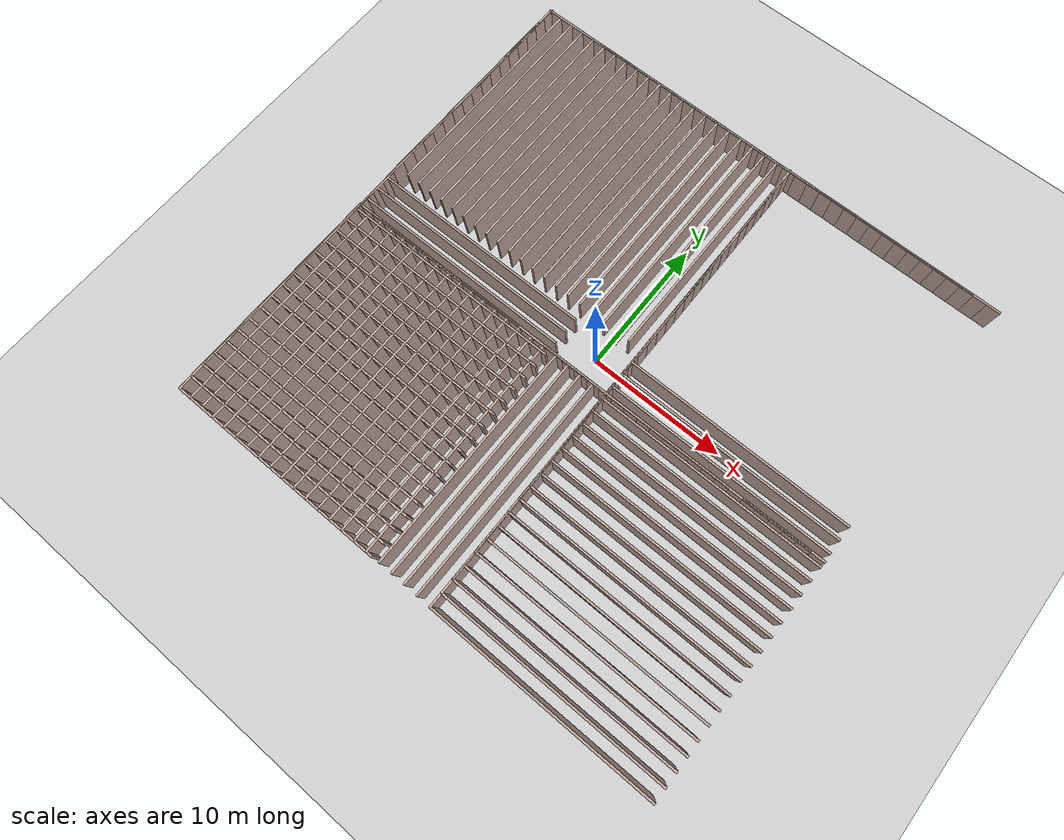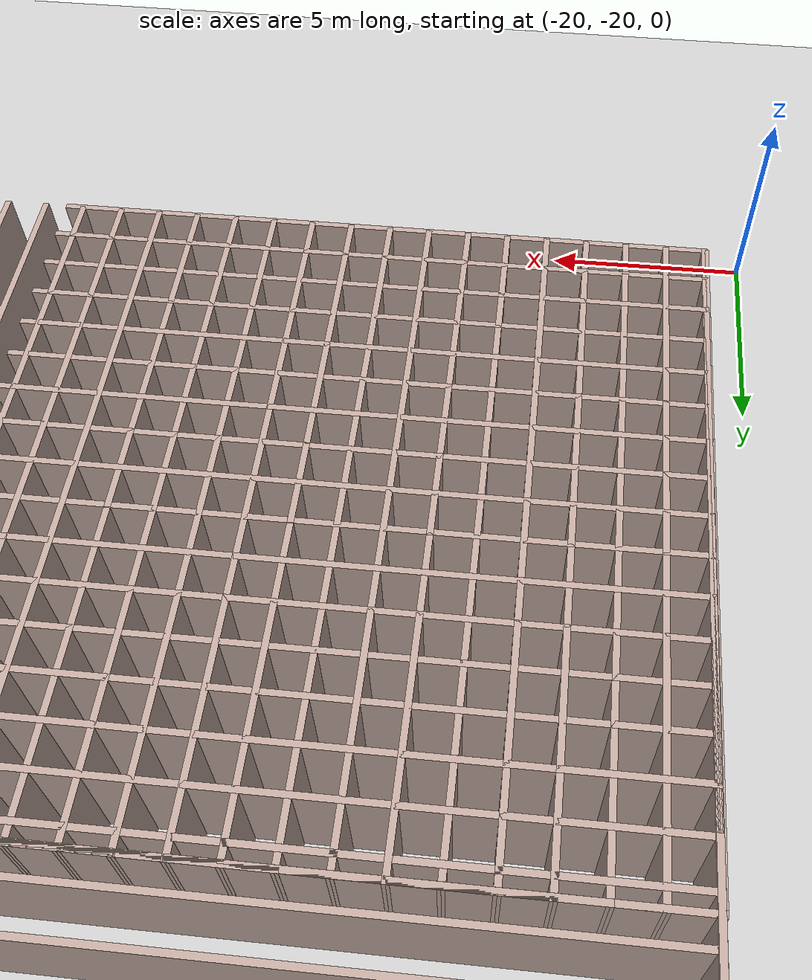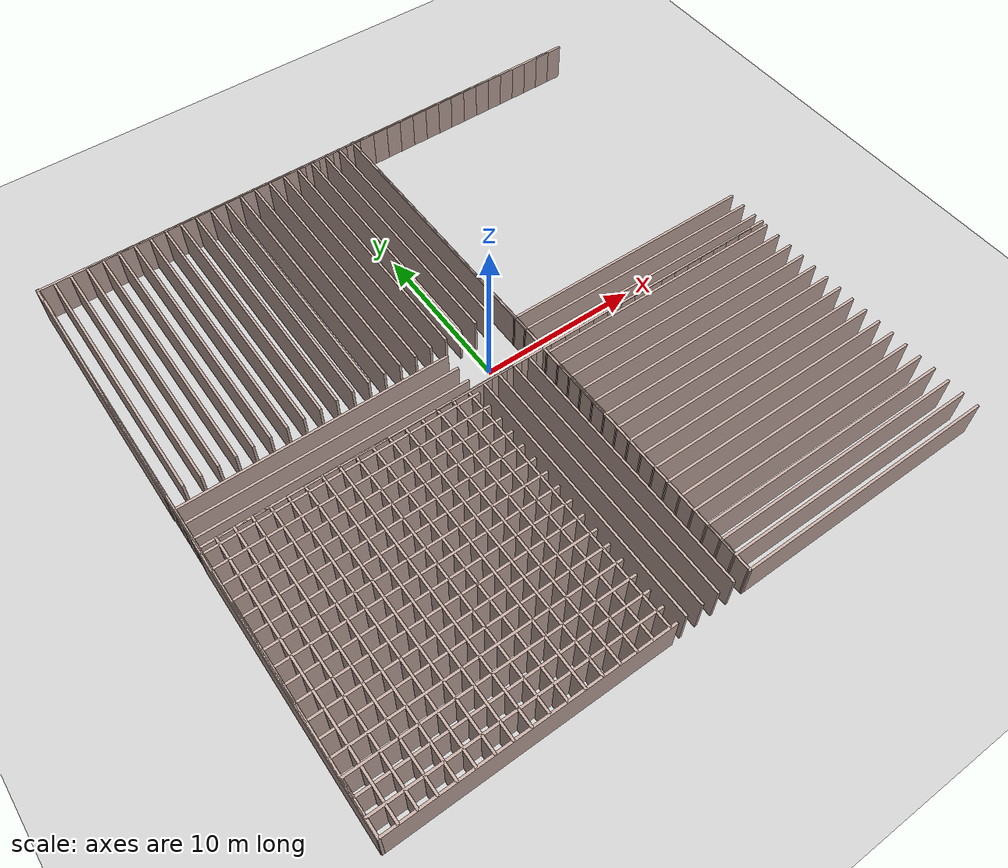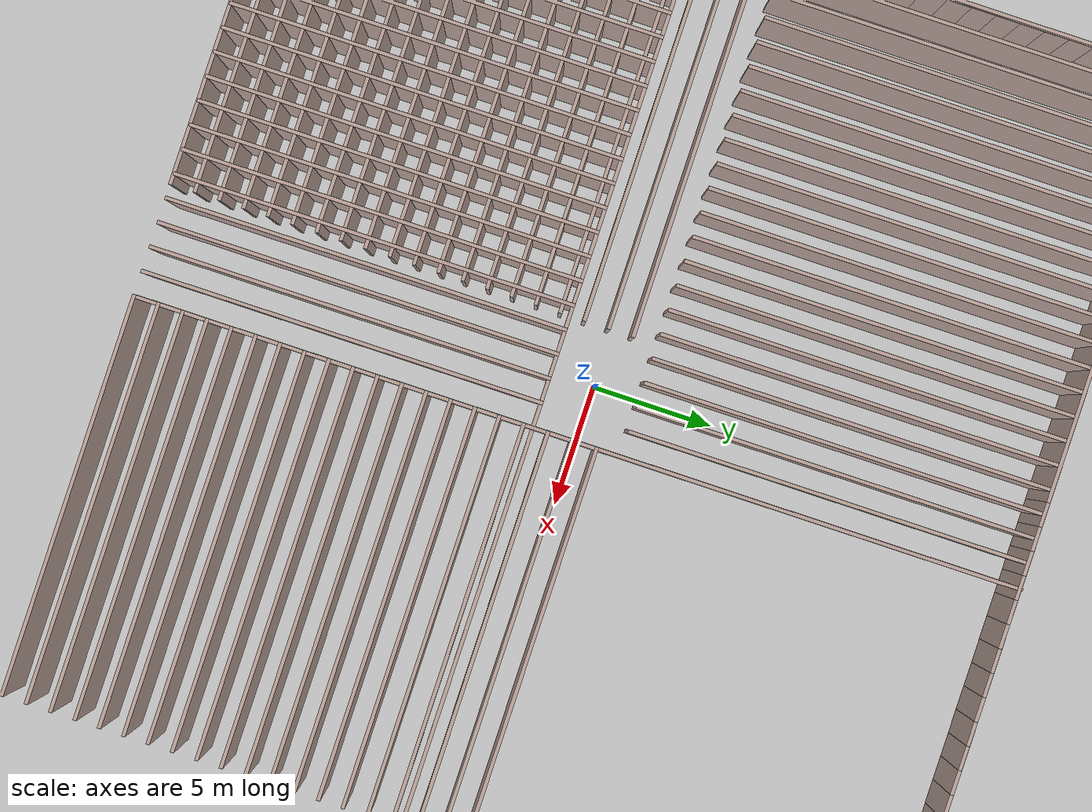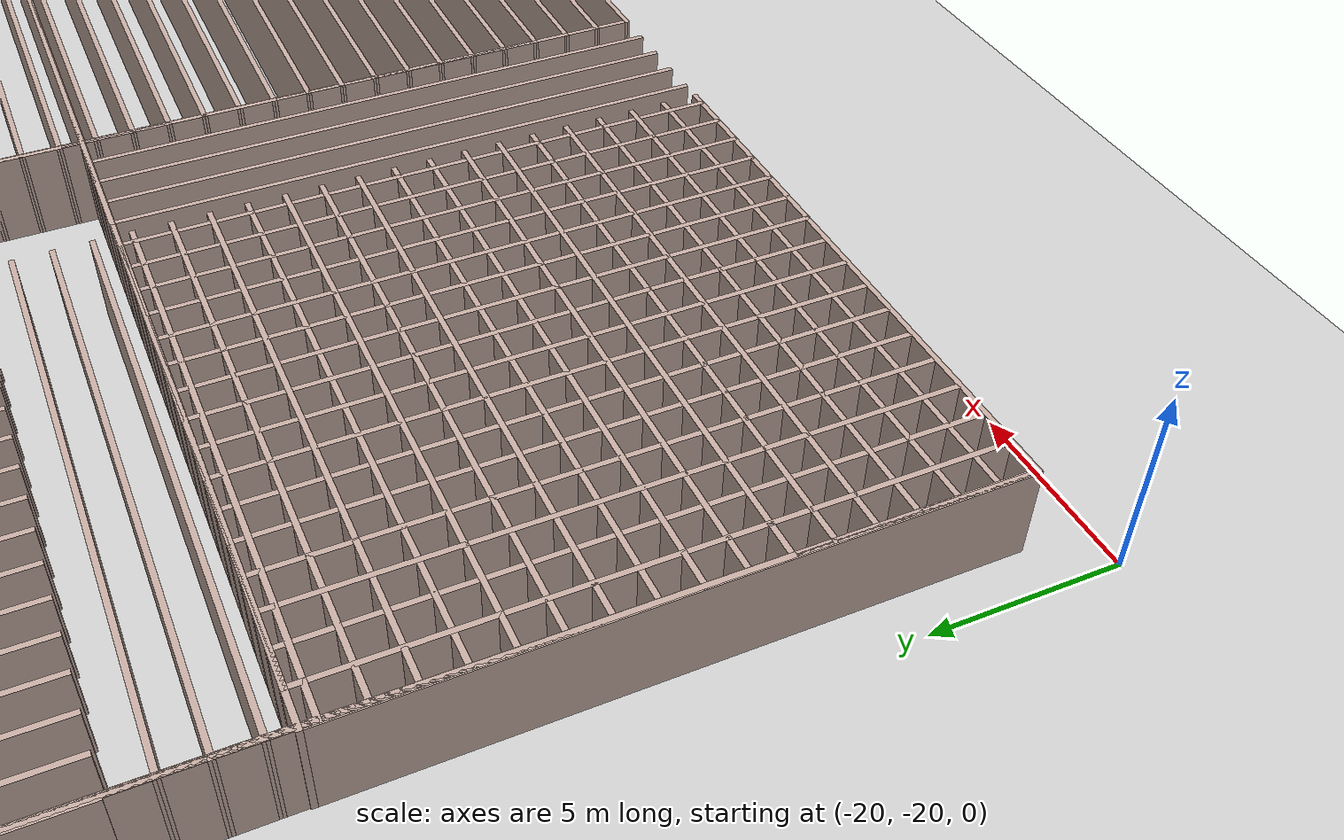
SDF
<?xml version="1.0" ?>

<sdf version="1.5">
	<world name="default">
		<!-- A global light source -->
		<include>
			<uri>model://sun</uri>
		</include>

		<!-- A ground plane -->
		<include>
			<uri>model://ground_plane</uri>
		</include>

        <!-- Left wall -->

        <include>
            <uri>model://wall</uri>
            <name>wall_left_01</name>
            <pose>-10 10 0 0 0 0</pose>
        </include>

        <include>
            <uri>model://wall</uri>
            <name>wall_left_02</name>
            <pose>-9 10 0 0 0 0</pose>
        </include>

        <include>
            <uri>model://wall</uri>
            <name>wall_left_03</name>
            <pose>-8 10 0 0 0 0</pose>
        </include>

        <include>
            <uri>model://wall</uri>
            <name>wall_left_04</name>
            <pose>-7 10 0 0 0 0</pose>
        </include>

        <include>
            <uri>model://wall</uri>
            <name>wall_left_05</name>
            <pose>-6 10 0 0 0 0</pose>
        </include>

        <include>
            <uri>model://wall</uri>
            <name>wall_left_06</name>
            <pose>-5 10 0 0 0 0</pose>
        </include>

        <include>
            <uri>model://wall</uri>
            <name>wall_left_07</name>
            <pose>-4 10 0 0 0 0</pose>
        </include>

        <include>
            <uri>model://wall</uri>
            <name>wall_left_08</name>
            <pose>-3 10 0 0 0 0</pose>
        </include>

        <include>
            <uri>model://wall</uri>
            <name>wall_left_09</name>
            <pose>-2 10 0 0 0 0</pose>
        </include>

        <include>
            <uri>model://wall</uri>
            <name>wall_left_10</name>
            <pose>-1 10 0 0 0 0</pose>
        </include>

        <include>
            <uri>model://wall</uri>
            <name>wall_left_11</name>
            <pose>0 10 0 0 0 0</pose>
        </include>

        <include>
            <uri>model://wall</uri>
            <name>wall_left_12</name>
            <pose>1 10 0 0 0 0</pose>
        </include>

        <include>
            <uri>model://wall</uri>
            <name>wall_left_13</name>
            <pose>2 10 0 0 0 0</pose>
        </include>

        <include>
            <uri>model://wall</uri>
            <name>wall_left_14</name>
            <pose>3 10 0 0 0 0</pose>
        </include>

        <include>
            <uri>model://wall</uri>
            <name>wall_left_15</name>
            <pose>4 10 0 0 0 0</pose>
        </include>

        <include>
            <uri>model://wall</uri>
            <name>wall_left_16</name>
            <pose>5 10 0 0 0 0</pose>
        </include>

        <include>
            <uri>model://wall</uri>
            <name>wall_left_17</name>
            <pose>6 10 0 0 0 0</pose>
        </include>

        <include>
            <uri>model://wall</uri>
            <name>wall_left_18</name>
            <pose>7 10 0 0 0 0</pose>
        </include>

        <include>
            <uri>model://wall</uri>
            <name>wall_left_19</name>
            <pose>8 10 0 0 0 0</pose>
        </include>

        <include>
            <uri>model://wall</uri>
            <name>wall_left_20</name>
            <pose>9 10 0 0 0 0</pose>
        </include>

        <include>
            <uri>model://wall</uri>
            <name>wall_left_21</name>
            <pose>10 10 0 0 0 0</pose>
        </include>

	<!-- Front wall -->

        <include>
            <uri>model://wall</uri>
            <name>wall_front_01</name>
            <pose>10.5 9.5 0 0 0 1.57</pose>
        </include>

        <include>
            <uri>model://wall</uri>
            <name>wall_front_02</name>
            <pose>10.5 8.5 0 0 0 1.57</pose>
        </include>

        <include>
            <uri>model://wall</uri>
            <name>wall_front_03</name>
            <pose>10.5 7.5 0 0 0 1.57</pose>
        </include>

        <include>
            <uri>model://wall</uri>
            <name>wall_front_04</name>
            <pose>10.5 6.5 0 0 0 1.57</pose>
        </include>

        <include>
            <uri>model://wall</uri>
            <name>wall_front_05</name>
            <pose>10.5 5.5 0 0 0 1.57</pose>
        </include>

        <include>
            <uri>model://wall</uri>
            <name>wall_front_06</name>
            <pose>10.5 4.5 0 0 0 1.57</pose>
        </include>

        <include>
            <uri>model://wall</uri>
            <name>wall_front_07</name>
            <pose>10.5 3.5 0 0 0 1.57</pose>
        </include>

        <include>
            <uri>model://wall</uri>
            <name>wall_front_08</name>
            <pose>10.5 2.5 0 0 0 1.57</pose>
        </include>

        <include>
            <uri>model://wall</uri>
            <name>wall_front_09</name>
            <pose>10.5 1.5 0 0 0 1.57</pose>
        </include>

        <include>
            <uri>model://wall</uri>
            <name>wall_front_10</name>
            <pose>10.5 0.5 0 0 0 1.57</pose>
        </include>

        <include>
            <uri>model://wall</uri>
            <name>wall_front_11</name>
            <pose>10.5 -0.5 0 0 0 1.57</pose>
        </include>

        <include>
            <uri>model://wall</uri>
            <name>wall_front_12</name>
            <pose>10.5 -1.5 0 0 0 1.57</pose>
        </include>

        <include>
            <uri>model://wall</uri>
            <name>wall_front_13</name>
            <pose>10.5 -2.5 0 0 0 1.57</pose>
        </include>

        <include>
            <uri>model://wall</uri>
            <name>wall_front_14</name>
            <pose>10.5 -3.5 0 0 0 1.57</pose>
        </include>

        <include>
            <uri>model://wall</uri>
            <name>wall_front_15</name>
            <pose>10.5 -4.5 0 0 0 1.57</pose>
        </include>

        <include>
            <uri>model://wall</uri>
            <name>wall_front_16</name>
            <pose>10.5 -5.5 0 0 0 1.57</pose>
        </include>

        <include>
            <uri>model://wall</uri>
            <name>wall_front_17</name>
            <pose>10.5 -6.5 0 0 0 1.57</pose>
        </include>

        <include>
            <uri>model://wall</uri>
            <name>wall_front_18</name>
            <pose>10.5 -7.5 0 0 0 1.57</pose>
        </include>

	<include>
            <uri>model://wall</uri>
            <name>wall_front_19</name>
            <pose>10.5 -8.5 0 0 0 1.57</pose>
        </include>

	<include>
            <uri>model://wall</uri>
            <name>wall_front_20</name>
            <pose>10.5 -9.5 0 0 0 1.57</pose>
        </include>

	<!-- Right Wall -->

	<include>
            <uri>model://wall</uri>
            <name>wall_right_01</name>
            <pose>10 -10 0 0 0 0</pose>
        </include>

	<include>
            <uri>model://wall</uri>
            <name>wall_right_02</name>
            <pose>9 -10 0 0 0 0</pose>
        </include>

	<include>
            <uri>model://wall</uri>
            <name>wall_right_03</name>
            <pose>8 -10 0 0 0 0</pose>
        </include>

	<include>
            <uri>model://wall</uri>
            <name>wall_right_04</name>
            <pose>7 -10 0 0 0 0</pose>
        </include>

	<include>
            <uri>model://wall</uri>
            <name>wall_right_05</name>
            <pose>6 -10 0 0 0 0</pose>
        </include>

	<include>
            <uri>model://wall</uri>
            <name>wall_right_06</name>
            <pose>5 -10 0 0 0 0</pose>
        </include>

	<include>
            <uri>model://wall</uri>
            <name>wall_right_07</name>
            <pose>4 -10 0 0 0 0</pose>
        </include>

	<include>
            <uri>model://wall</uri>
            <name>wall_right_08</name>
            <pose>3 -10 0 0 0 0</pose>
        </include>

	<include>
            <uri>model://wall</uri>
            <name>wall_right_09</name>
            <pose>2 -10 0 0 0 0</pose>
        </include>

	<include>
            <uri>model://wall</uri>
            <name>wall_right_10</name>
            <pose>1 -10 0 0 0 0</pose>
        </include>

    <include>
            <uri>model://wall</uri>
            <name>wall_right_11</name>
            <pose>0 -10 0 0 0 0</pose>
        </include>

        <include>
            <uri>model://wall</uri>
            <name>wall_right_12</name>
            <pose>-1 -10 0 0 0 0</pose>
        </include>

        <include>
            <uri>model://wall</uri>
            <name>wall_right_13</name>
            <pose>-2 -10 0 0 0 0</pose>
        </include>

        <include>
            <uri>model://wall</uri>
            <name>wall_right_14</name>
            <pose>-3 -10 0 0 0 0</pose>
        </include>

        <include>
            <uri>model://wall</uri>
            <name>wall_right_15</name>
            <pose>-4 -10 0 0 0 0</pose>
        </include>

        <include>
            <uri>model://wall</uri>
            <name>wall_right_16</name>
            <pose>-5 -10 0 0 0 0</pose>
        </include>

        <include>
            <uri>model://wall</uri>
            <name>wall_right_17</name>
            <pose>-6 -10 0 0 0 0</pose>
        </include>

        <include>
            <uri>model://wall</uri>
            <name>wall_right_18</name>
            <pose>-7 -10 0 0 0 0</pose>
        </include>

        <include>
            <uri>model://wall</uri>
            <name>wall_right_19</name>
            <pose>-8 -10 0 0 0 0</pose>
        </include>

        <include>
            <uri>model://wall</uri>
            <name>wall_right_20</name>
            <pose>-9 -10 0 0 0 0</pose>
        </include>

        <include>
            <uri>model://wall</uri>
            <name>wall_right_21</name>
            <pose>-10 -10 0 0 0 0</pose>
        </include>

    <!-- Back wall -->

        <include>
            <uri>model://wall</uri>
            <name>wall_back_01</name>
            <pose>-10.5 9.5 0 0 0 1.57</pose>
        </include>

        <include>
            <uri>model://wall</uri>
            <name>wall_back_02</name>
            <pose>-10.5 8.5 0 0 0 1.57</pose>
        </include>

        <include>
            <uri>model://wall</uri>
            <name>wall_back_03</name>
            <pose>-10.5 7.5 0 0 0 1.57</pose>
        </include>

        <include>
            <uri>model://wall</uri>
            <name>wall_back_04</name>
            <pose>-10.5 6.5 0 0 0 1.57</pose>
        </include>

        <include>
            <uri>model://wall</uri>
            <name>wall_back_05</name>
            <pose>-10.5 5.5 0 0 0 1.57</pose>
        </include>

        <include>
            <uri>model://wall</uri>
            <name>wall_back_06</name>
            <pose>-10.5 4.5 0 0 0 1.57</pose>
        </include>

        <include>
            <uri>model://wall</uri>
            <name>wall_back_07</name>
            <pose>-10.5 3.5 0 0 0 1.57</pose>
        </include>

        <include>
            <uri>model://wall</uri>
            <name>wall_back_08</name>
            <pose>-10.5 2.5 0 0 0 1.57</pose>
        </include>

        <include>
            <uri>model://wall</uri>
            <name>wall_back_09</name>
            <pose>-10.5 1.5 0 0 0 1.57</pose>
        </include>

        <include>
            <uri>model://wall</uri>
            <name>wall_back_10</name>
            <pose>-10.5 0.5 0 0 0 1.57</pose>
        </include>

        <include>
            <uri>model://wall</uri>
            <name>wall_back_11</name>
            <pose>-10.5 -0.5 0 0 0 1.57</pose>
        </include>

        <include>
            <uri>model://wall</uri>
            <name>wall_back_12</name>
            <pose>-10.5 -1.5 0 0 0 1.57</pose>
        </include>

        <include>
            <uri>model://wall</uri>
            <name>wall_back_13</name>
            <pose>-10.5 -2.5 0 0 0 1.57</pose>
        </include>

        <include>
            <uri>model://wall</uri>
            <name>wall_back_14</name>
            <pose>-10.5 -3.5 0 0 0 1.57</pose>
        </include>

        <include>
            <uri>model://wall</uri>
            <name>wall_back_15</name>
            <pose>-10.5 -4.5 0 0 0 1.57</pose>
        </include>

        <include>
            <uri>model://wall</uri>
            <name>wall_back_16</name>
            <pose>-10.5 -5.5 0 0 0 1.57</pose>
        </include>

        <include>
            <uri>model://wall</uri>
            <name>wall_back_17</name>
            <pose>-10.5 -6.5 0 0 0 1.57</pose>
        </include>

        <include>
            <uri>model://wall</uri>
            <name>wall_back_18</name>
            <pose>-10.5 -7.5 0 0 0 1.57</pose>
        </include>

	<include>
            <uri>model://wall</uri>
            <name>wall_back_19</name>
            <pose>-10.5 -8.5 0 0 0 1.57</pose>
        </include>

	<include>
            <uri>model://wall</uri>
            <name>wall_back_20</name>
            <pose>-10.5 -9.5 0 0 0 1.57</pose>
        </include>

	</world>
</sdf>

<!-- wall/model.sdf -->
<sdf version='1.6'>
  <model name='wall'>
    <pose frame=''>-1.26581 1.80502 0 0 -0 0</pose>
    <link name='Wall_0'>
      <collision name='Wall_0_Collision'>
        <geometry>
          <box>
            <size>16.5 0.15 2.5</size>
          </box>
        </geometry>
        <pose frame=''>0 0 1.25 0 -0 0</pose>
      </collision>
      <visual name='Wall_0_Visual'>
        <pose frame=''>0 0 1.25 0 -0 0</pose>
        <geometry>
          <box>
            <size>16.5 0.15 2.5</size>
          </box>
        </geometry>
        <material>
          <script>
            <uri>file://media/materials/scripts/gazebo.material</uri>
            <name>Gazebo/Grey</name>
          </script>
          <ambient>0.760784 0.662745 0.627451 1</ambient>
        </material>
        <meta>
          <layer>0</layer>
        </meta>
      </visual>
      <pose frame=''>-8.71419 -1.8e-05 0 0 0 -1.5708</pose>
    </link>
    <link name='Wall_2'>
      <collision name='Wall_2_Collision'>
        <geometry>
          <box>
            <size>17.5784 0.15 2.5</size>
          </box>
        </geometry>
        <pose frame=''>0 0 1.25 0 -0 0</pose>
      </collision>
      <visual name='Wall_2_Visual'>
        <pose frame=''>0 0 1.25 0 -0 0</pose>
        <geometry>
          <box>
            <size>17.5784 0.15 2.5</size>
          </box>
        </geometry>
        <material>
          <script>
            <uri>file://media/materials/scripts/gazebo.material</uri>
            <name>Gazebo/Grey</name>
          </script>
          <ambient>0.760784 0.662745 0.627451 1</ambient>
        </material>
        <meta>
          <layer>0</layer>
        </meta>
      </visual>
      <pose frame=''>0 8.17066 0 0 0 -0.000496</pose>
    </link>
    <static>1</static>
  </model>
</sdf>
